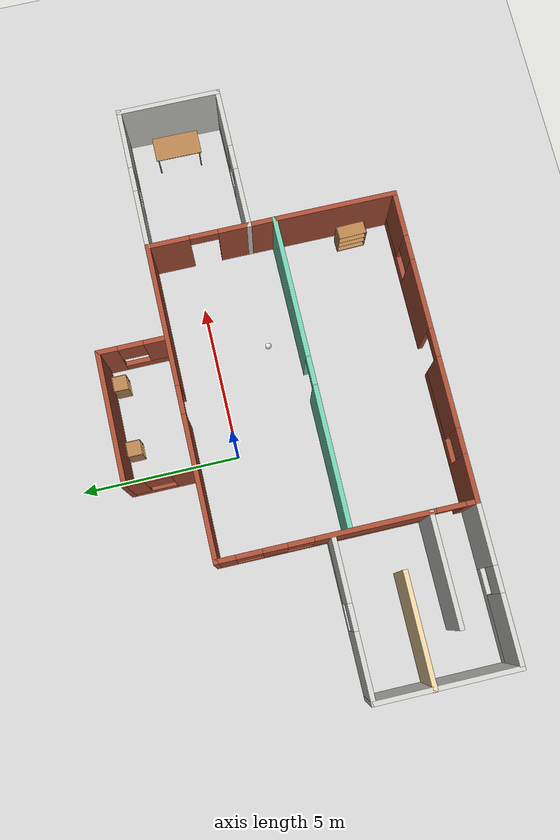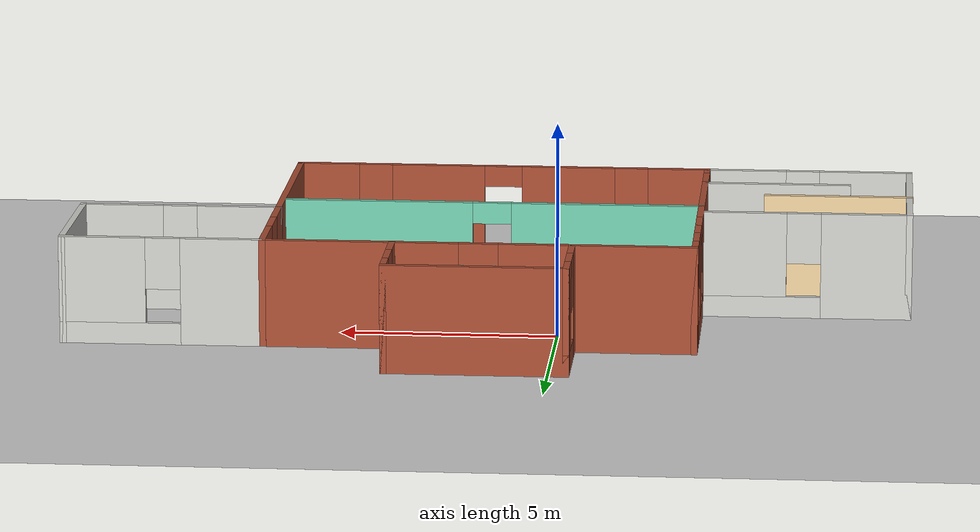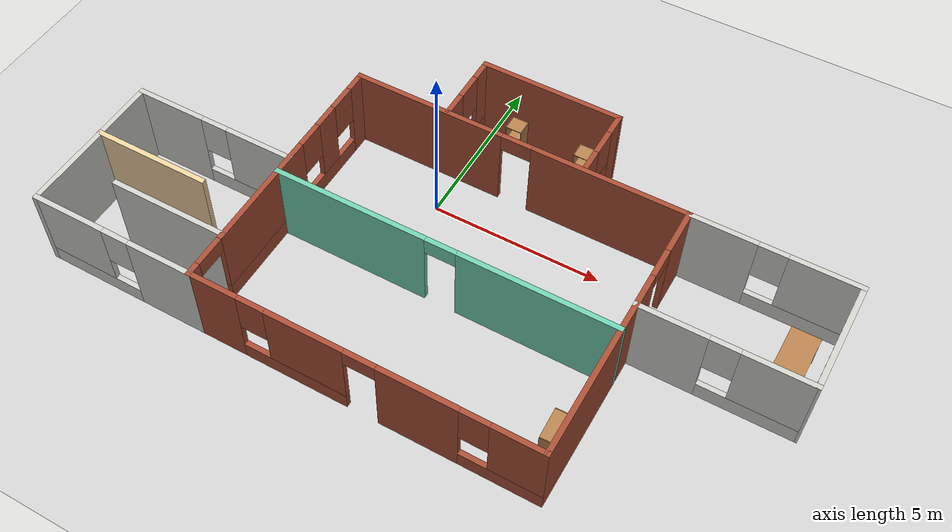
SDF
<sdf version="1.6">
 <world name="default">
  <plugin name="welcome_msg" filename="libwelcome.so"/>
  <light name="sun" type="directional">
   <pose>0 0 10 0 -0 0</pose>
   <diffuse>0.8 0.8 0.8 1</diffuse>
   <specular>0.2 0.2 0.2 1</specular>
   <attenuation>
    <range>1000</range>
    <constant>0.9</constant>
    <linear>0.01</linear>
    <quadratic>0.001</quadratic>
   </attenuation>
   <direction>-0.5 0.1 -0.9</direction>
  </light>
  <model name="ground_plane">
   <static>1</static>
   <link name="link">
    <collision name="collision">
     <geometry><plane><normal>0 0 1</normal><size>100 100</size></plane></geometry>
     <surface>
      <contact><collide_bitmask>65535</collide_bitmask></contact>
      <friction><ode><mu>100</mu><mu2>50</mu2></ode></friction>
     </surface>
    </collision>
    <visual name="visual">
     <cast_shadows>0</cast_shadows>
     <geometry><plane><normal>0 0 1</normal><size>100 100</size></plane></geometry>
     <material>
      <script><uri>file://media/materials/scripts/gazebo.material</uri><name>Gazebo/Grey</name></script>
     </material>
    </visual>
   </link>
  </model>
  <gravity>0 0 -9.8</gravity>
  <magnetic_field>6e-06 2.3e-05 -4.2e-05</magnetic_field>
  <atmosphere type="adiabatic"/>
  <physics name="default_physics" default="0" type="ode">
   <max_step_size>0.001</max_step_size>
   <real_time_factor>1</real_time_factor>
   <real_time_update_rate>1000</real_time_update_rate>
  </physics>
  <scene><ambient>0.4 0.4 0.4 1</ambient><background>0.7 0.7 0.7 1</background><shadows>1</shadows></scene>
  <spherical_coordinates>
   <surface_model>EARTH_WGS84</surface_model>
   <latitude_deg>0</latitude_deg>
   <longitude_deg>0</longitude_deg>
   <elevation>0</elevation>
   <heading_deg>0</heading_deg>
  </spherical_coordinates>
  <model name="building">
   <pose>1.60218 -1.55988 0 0 -0 0</pose>
   <link name="Wall_0">
    <pose>0.129847 -4.99566 0 0 -0 0</pose>
    <visual name="Wall_0_Visual_0">
     <pose>-4.24823 0 1.25 0 -0 0</pose>
     <geometry><box><size>1.50354 0.15 2.5</size></box></geometry>
     <material>
      <script><uri>file://media/materials/scripts/gazebo.material</uri><name>Gazebo/Bricks</name></script>
      <ambient>1 1 1 1</ambient>
     </material>
     <meta><layer>0</layer></meta>
    </visual>
    <collision name="Wall_0_Collision_0">
     <geometry><box><size>1.50354 0.15 2.5</size></box></geometry>
     <pose>-4.24823 0 1.25 0 -0 0</pose>
    </collision>
    <visual name="Wall_0_Visual_1">
     <pose>1.5728 0 1.25 0 -0 0</pose>
     <geometry><box><size>2.24445 0.15 2.5</size></box></geometry>
     <material>
      <script><uri>file://media/materials/scripts/gazebo.material</uri><name>Gazebo/Bricks</name></script>
      <ambient>1 1 1 1</ambient>
     </material>
     <meta><layer>0</layer></meta>
    </visual>
    <collision name="Wall_0_Collision_1">
     <geometry><box><size>2.24445 0.15 2.5</size></box></geometry>
     <pose>1.5728 0 1.25 0 -0 0</pose>
    </collision>
    <visual name="Wall_0_Visual_2">
     <pose>-1.97294 0 0.25 0 -0 0</pose>
     <geometry><box><size>3.04703 0.15 0.5</size></box></geometry>
     <material>
      <script><uri>file://media/materials/scripts/gazebo.material</uri><name>Gazebo/Bricks</name></script>
      <ambient>1 1 1 1</ambient>
     </material>
     <meta><layer>0</layer></meta>
    </visual>
    <collision name="Wall_0_Collision_2">
     <geometry><box><size>3.04703 0.15 0.5</size></box></geometry>
     <pose>-1.97294 0 0.25 0 -0 0</pose>
    </collision>
    <visual name="Wall_0_Visual_3">
     <pose>3.84751 0 0.25 0 -0 0</pose>
     <geometry><box><size>2.30497 0.15 0.5</size></box></geometry>
     <material>
      <script><uri>file://media/materials/scripts/gazebo.material</uri><name>Gazebo/Bricks</name></script>
      <ambient>1 1 1 1</ambient>
     </material>
     <meta><layer>0</layer></meta>
    </visual>
    <collision name="Wall_0_Collision_3">
     <geometry><box><size>2.30497 0.15 0.5</size></box></geometry>
     <pose>3.84751 0 0.25 0 -0 0</pose>
    </collision>
    <visual name="Wall_0_Visual_4">
     <pose>-1.57294 0 1.5 0 -0 0</pose>
     <geometry><box><size>2.24703 0.15 2</size></box></geometry>
     <material>
      <script><uri>file://media/materials/scripts/gazebo.material</uri><name>Gazebo/Bricks</name></script>
      <ambient>1 1 1 1</ambient>
     </material>
     <meta><layer>0</layer></meta>
    </visual>
    <collision name="Wall_0_Collision_4">
     <geometry><box><size>2.24703 0.15 2</size></box></geometry>
     <pose>-1.57294 0 1.5 0 -0 0</pose>
    </collision>
    <visual name="Wall_0_Visual_5">
     <pose>-1.57294 0 1.5 0 -0 0</pose>
     <geometry><box><size>2.24703 0.15 2</size></box></geometry>
     <material>
      <script><uri>file://media/materials/scripts/gazebo.material</uri><name>Gazebo/Bricks</name></script>
      <ambient>1 1 1 1</ambient>
     </material>
     <meta><layer>0</layer></meta>
    </visual>
    <collision name="Wall_0_Collision_5">
     <geometry><box><size>2.24703 0.15 2</size></box></geometry>
     <pose>-1.57294 0 1.5 0 -0 0</pose>
    </collision>
    <visual name="Wall_0_Visual_6">
     <pose>4.24751 0 1.5 0 -0 0</pose>
     <geometry><box><size>1.50497 0.15 2</size></box></geometry>
     <material>
      <script><uri>file://media/materials/scripts/gazebo.material</uri><name>Gazebo/Bricks</name></script>
      <ambient>1 1 1 1</ambient>
     </material>
     <meta><layer>0</layer></meta>
    </visual>
    <collision name="Wall_0_Collision_6">
     <geometry><box><size>1.50497 0.15 2</size></box></geometry>
     <pose>4.24751 0 1.5 0 -0 0</pose>
    </collision>
    <visual name="Wall_0_Visual_7">
     <pose>-3.09646 0 1.9 0 -0 0</pose>
     <geometry><box><size>0.8 0.15 1.2</size></box></geometry>
     <material>
      <script><uri>file://media/materials/scripts/gazebo.material</uri><name>Gazebo/Bricks</name></script>
      <ambient>1 1 1 1</ambient>
     </material>
     <meta><layer>0</layer></meta>
    </visual>
    <collision name="Wall_0_Collision_7">
     <geometry><box><size>0.8 0.15 1.2</size></box></geometry>
     <pose>-3.09646 0 1.9 0 -0 0</pose>
    </collision>
    <visual name="Wall_0_Visual_8">
     <pose>3.09503 0 1.9 0 -0 0</pose>
     <geometry><box><size>0.8 0.15 1.2</size></box></geometry>
     <material>
      <script><uri>file://media/materials/scripts/gazebo.material</uri><name>Gazebo/Bricks</name></script>
      <ambient>1 1 1 1</ambient>
     </material>
     <meta><layer>0</layer></meta>
    </visual>
    <collision name="Wall_0_Collision_8">
     <geometry><box><size>0.8 0.15 1.2</size></box></geometry>
     <pose>3.09503 0 1.9 0 -0 0</pose>
    </collision>
    <visual name="Wall_0_Visual_9">
     <pose>0.000575 0 2.25 0 -0 0</pose>
     <geometry><box><size>0.9 0.15 0.5</size></box></geometry>
     <material>
      <script><uri>file://media/materials/scripts/gazebo.material</uri><name>Gazebo/Bricks</name></script>
      <ambient>1 1 1 1</ambient>
     </material>
     <meta><layer>0</layer></meta>
    </visual>
    <collision name="Wall_0_Collision_9">
     <geometry><box><size>0.9 0.15 0.5</size></box></geometry>
     <pose>0.000575 0 2.25 0 -0 0</pose>
    </collision>
    <visual name="Wall_0_Visual_10">
     <pose>0.000575 0 2.25 0 -0 0</pose>
     <geometry><box><size>0.9 0.15 0.5</size></box></geometry>
     <material>
      <script><uri>file://media/materials/scripts/gazebo.material</uri><name>Gazebo/Bricks</name></script>
      <ambient>1 1 1 1</ambient>
     </material>
     <meta><layer>0</layer></meta>
    </visual>
    <collision name="Wall_0_Collision_10">
     <geometry><box><size>0.9 0.15 0.5</size></box></geometry>
     <pose>0.000575 0 2.25 0 -0 0</pose>
    </collision>
   </link>
   <link name="Wall_1">
    <pose>5.05485 -1.07066 0 0 -0 1.5708</pose>
    <visual name="Wall_1_Visual_0">
     <pose>-1.14884 0 1.25 0 -0 0</pose>
     <geometry><box><size>5.70231 0.15 2.5</size></box></geometry>
     <material>
      <script><uri>file://media/materials/scripts/gazebo.material</uri><name>Gazebo/Bricks</name></script>
      <ambient>1 1 1 1</ambient>
     </material>
     <meta><layer>0</layer></meta>
    </visual>
    <collision name="Wall_1_Collision_0">
     <geometry><box><size>5.70231 0.15 2.5</size></box></geometry>
     <pose>-1.14884 0 1.25 0 -0 0</pose>
    </collision>
    <visual name="Wall_1_Visual_1">
     <pose>3.30116 0 1.25 0 -0 0</pose>
     <geometry><box><size>1.39769 0.15 2.5</size></box></geometry>
     <material>
      <script><uri>file://media/materials/scripts/gazebo.material</uri><name>Gazebo/Bricks</name></script>
      <ambient>1 1 1 1</ambient>
     </material>
     <meta><layer>0</layer></meta>
    </visual>
    <collision name="Wall_1_Collision_1">
     <geometry><box><size>1.39769 0.15 2.5</size></box></geometry>
     <pose>3.30116 0 1.25 0 -0 0</pose>
    </collision>
    <visual name="Wall_1_Visual_2">
     <pose>2.15231 0 2.25 0 -0 0</pose>
     <geometry><box><size>0.9 0.15 0.5</size></box></geometry>
     <material>
      <script><uri>file://media/materials/scripts/gazebo.material</uri><name>Gazebo/Bricks</name></script>
      <ambient>1 1 1 1</ambient>
     </material>
     <meta><layer>0</layer></meta>
    </visual>
    <collision name="Wall_1_Collision_2">
     <geometry><box><size>0.9 0.15 0.5</size></box></geometry>
     <pose>2.15231 0 2.25 0 -0 0</pose>
    </collision>
   </link>
   <link name="Wall_10">
    <collision name="Wall_10_Collision">
     <geometry><box><size>3.5 0.15 2.5</size></box></geometry>
     <pose>0 0 1.25 0 -0 0</pose>
    </collision>
    <visual name="Wall_10_Visual">
     <pose>0 0 1.25 0 -0 0</pose>
     <geometry><box><size>3.5 0.15 2.5</size></box></geometry>
     <material>
      <script><uri>file://media/materials/scripts/gazebo.material</uri><name>Gazebo/Grey</name></script>
      <ambient>0.921569 0.807843 0.615686 1</ambient>
     </material>
     <meta><layer>0</layer></meta>
    </visual>
    <pose>-7.97989 -2.43004 0 0 -0 0</pose>
   </link>
   <link name="Wall_12">
    <pose>0.133065 -1.17007 0 0 -0 0</pose>
    <visual name="Wall_12_Visual_0">
     <pose>-2.73364 0 1.25 0 -0 0</pose>
     <geometry><box><size>4.53271 0.15 2.5</size></box></geometry>
     <material>
      <script><uri>file://media/materials/scripts/gazebo.material</uri><name>Gazebo/Grey</name></script>
      <ambient>0.435294 0.796078 0.67451 1</ambient>
     </material>
     <meta><layer>0</layer></meta>
    </visual>
    <collision name="Wall_12_Collision_0">
     <geometry><box><size>4.53271 0.15 2.5</size></box></geometry>
     <pose>-2.73364 0 1.25 0 -0 0</pose>
    </collision>
    <visual name="Wall_12_Visual_1">
     <pose>2.71636 0 1.25 0 -0 0</pose>
     <geometry><box><size>4.56729 0.15 2.5</size></box></geometry>
     <material>
      <script><uri>file://media/materials/scripts/gazebo.material</uri><name>Gazebo/Grey</name></script>
      <ambient>0.435294 0.796078 0.67451 1</ambient>
     </material>
     <meta><layer>0</layer></meta>
    </visual>
    <collision name="Wall_12_Collision_1">
     <geometry><box><size>4.56729 0.15 2.5</size></box></geometry>
     <pose>2.71636 0 1.25 0 -0 0</pose>
    </collision>
    <visual name="Wall_12_Visual_2">
     <pose>-0.017288 0 2.25 0 -0 0</pose>
     <geometry><box><size>0.9 0.15 0.5</size></box></geometry>
     <material>
      <script><uri>file://media/materials/scripts/gazebo.material</uri><name>Gazebo/Grey</name></script>
      <ambient>0.435294 0.796078 0.67451 1</ambient>
     </material>
     <meta><layer>0</layer></meta>
    </visual>
    <collision name="Wall_12_Collision_2">
     <geometry><box><size>0.9 0.15 0.5</size></box></geometry>
     <pose>-0.017288 0 2.25 0 -0 0</pose>
    </collision>
   </link>
   <link name="Wall_14">
    <pose>-2.00976 3.94566 0 0 -0 1.5708</pose>
    <visual name="Wall_14_Visual_0">
     <pose>-0.743931 0 1.25 0 -0 0</pose>
     <geometry><box><size>0.762138 0.15 2.5</size></box></geometry>
     <material>
      <script><uri>file://media/materials/scripts/gazebo.material</uri><name>Gazebo/Bricks</name></script>
      <ambient>1 1 1 1</ambient>
     </material>
     <meta><layer>0</layer></meta>
    </visual>
    <collision name="Wall_14_Collision_0">
     <geometry><box><size>0.762138 0.15 2.5</size></box></geometry>
     <pose>-0.743931 0 1.25 0 -0 0</pose>
    </collision>
    <visual name="Wall_14_Visual_1">
     <pose>0.381069 0 0.25 0 -0 0</pose>
     <geometry><box><size>1.48786 0.15 0.5</size></box></geometry>
     <material>
      <script><uri>file://media/materials/scripts/gazebo.material</uri><name>Gazebo/Bricks</name></script>
      <ambient>1 1 1 1</ambient>
     </material>
     <meta><layer>0</layer></meta>
    </visual>
    <collision name="Wall_14_Collision_1">
     <geometry><box><size>1.48786 0.15 0.5</size></box></geometry>
     <pose>0.381069 0 0.25 0 -0 0</pose>
    </collision>
    <visual name="Wall_14_Visual_2">
     <pose>0.781069 0 1.5 0 -0 0</pose>
     <geometry><box><size>0.687862 0.15 2</size></box></geometry>
     <material>
      <script><uri>file://media/materials/scripts/gazebo.material</uri><name>Gazebo/Bricks</name></script>
      <ambient>1 1 1 1</ambient>
     </material>
     <meta><layer>0</layer></meta>
    </visual>
    <collision name="Wall_14_Collision_2">
     <geometry><box><size>0.687862 0.15 2</size></box></geometry>
     <pose>0.781069 0 1.5 0 -0 0</pose>
    </collision>
    <visual name="Wall_14_Visual_3">
     <pose>0.037138 0 1.9 0 -0 0</pose>
     <geometry><box><size>0.8 0.15 1.2</size></box></geometry>
     <material>
      <script><uri>file://media/materials/scripts/gazebo.material</uri><name>Gazebo/Bricks</name></script>
      <ambient>1 1 1 1</ambient>
     </material>
     <meta><layer>0</layer></meta>
    </visual>
    <collision name="Wall_14_Collision_3">
     <geometry><box><size>0.8 0.15 1.2</size></box></geometry>
     <pose>0.037138 0 1.9 0 -0 0</pose>
    </collision>
   </link>
   <link name="Wall_15">
    <collision name="Wall_15_Collision">
     <geometry><box><size>4.25 0.15 2.5</size></box></geometry>
     <pose>0 0 1.25 0 -0 0</pose>
    </collision>
    <visual name="Wall_15_Visual">
     <pose>0 0 1.25 0 -0 0</pose>
     <geometry><box><size>4.25 0.15 2.5</size></box></geometry>
     <material>
      <script><uri>file://media/materials/scripts/gazebo.material</uri><name>Gazebo/Bricks</name></script>
      <ambient>1 1 1 1</ambient>
     </material>
     <meta><layer>0</layer></meta>
    </visual>
    <pose>0.040235 4.99566 0 0 -0 0</pose>
   </link>
   <link name="Wall_16">
    <pose>2.09023 3.94566 0 0 0 -1.5708</pose>
    <visual name="Wall_16_Visual_0">
     <pose>-0.781069 0 1.25 0 -0 0</pose>
     <geometry><box><size>0.687862 0.15 2.5</size></box></geometry>
     <material>
      <script><uri>file://media/materials/scripts/gazebo.material</uri><name>Gazebo/Bricks</name></script>
      <ambient>1 1 1 1</ambient>
     </material>
     <meta><layer>0</layer></meta>
    </visual>
    <collision name="Wall_16_Collision_0">
     <geometry><box><size>0.687862 0.15 2.5</size></box></geometry>
     <pose>-0.781069 0 1.25 0 -0 0</pose>
    </collision>
    <visual name="Wall_16_Visual_1">
     <pose>0.343931 0 0.25 0 -0 0</pose>
     <geometry><box><size>1.56214 0.15 0.5</size></box></geometry>
     <material>
      <script><uri>file://media/materials/scripts/gazebo.material</uri><name>Gazebo/Bricks</name></script>
      <ambient>1 1 1 1</ambient>
     </material>
     <meta><layer>0</layer></meta>
    </visual>
    <collision name="Wall_16_Collision_1">
     <geometry><box><size>1.56214 0.15 0.5</size></box></geometry>
     <pose>0.343931 0 0.25 0 -0 0</pose>
    </collision>
    <visual name="Wall_16_Visual_2">
     <pose>0.743931 0 1.5 0 -0 0</pose>
     <geometry><box><size>0.762138 0.15 2</size></box></geometry>
     <material>
      <script><uri>file://media/materials/scripts/gazebo.material</uri><name>Gazebo/Bricks</name></script>
      <ambient>1 1 1 1</ambient>
     </material>
     <meta><layer>0</layer></meta>
    </visual>
    <collision name="Wall_16_Collision_2">
     <geometry><box><size>0.762138 0.15 2</size></box></geometry>
     <pose>0.743931 0 1.5 0 -0 0</pose>
    </collision>
    <visual name="Wall_16_Visual_3">
     <pose>-0.037138 0 1.9 0 -0 0</pose>
     <geometry><box><size>0.8 0.15 1.2</size></box></geometry>
     <material>
      <script><uri>file://media/materials/scripts/gazebo.material</uri><name>Gazebo/Bricks</name></script>
      <ambient>1 1 1 1</ambient>
     </material>
     <meta><layer>0</layer></meta>
    </visual>
    <collision name="Wall_16_Collision_3">
     <geometry><box><size>0.8 0.15 1.2</size></box></geometry>
     <pose>-0.037138 0 1.9 0 -0 0</pose>
    </collision>
   </link>
   <link name="Wall_2">
    <pose>0.129847 2.85433 0 0 -0 3.14159</pose>
    <visual name="Wall_2_Visual_0">
     <pose>-2.7192 0 1.25 0 -0 0</pose>
     <geometry><box><size>4.5616 0.15 2.5</size></box></geometry>
     <material>
      <script><uri>file://media/materials/scripts/gazebo.material</uri><name>Gazebo/Bricks</name></script>
      <ambient>1 1 1 1</ambient>
     </material>
     <meta><layer>0</layer></meta>
    </visual>
    <collision name="Wall_2_Collision_0">
     <geometry><box><size>4.5616 0.15 2.5</size></box></geometry>
     <pose>-2.7192 0 1.25 0 -0 0</pose>
    </collision>
    <visual name="Wall_2_Visual_1">
     <pose>2.7308 0 1.25 0 -0 0</pose>
     <geometry><box><size>4.5384 0.15 2.5</size></box></geometry>
     <material>
      <script><uri>file://media/materials/scripts/gazebo.material</uri><name>Gazebo/Bricks</name></script>
      <ambient>1 1 1 1</ambient>
     </material>
     <meta><layer>0</layer></meta>
    </visual>
    <collision name="Wall_2_Collision_1">
     <geometry><box><size>4.5384 0.15 2.5</size></box></geometry>
     <pose>2.7308 0 1.25 0 -0 0</pose>
    </collision>
    <visual name="Wall_2_Visual_2">
     <pose>0.011596 0 2.25 0 -0 0</pose>
     <geometry><box><size>0.9 0.15 0.5</size></box></geometry>
     <material>
      <script><uri>file://media/materials/scripts/gazebo.material</uri><name>Gazebo/Bricks</name></script>
      <ambient>1 1 1 1</ambient>
     </material>
     <meta><layer>0</layer></meta>
    </visual>
    <collision name="Wall_2_Collision_2">
     <geometry><box><size>0.9 0.15 0.5</size></box></geometry>
     <pose>0.011596 0 2.25 0 -0 0</pose>
    </collision>
   </link>
   <link name="Wall_23">
    <pose>7.35485 2.85433 0 0 -0 0</pose>
    <visual name="Wall_23_Visual_0">
     <pose>-1.39772 0 1.25 0 -0 0</pose>
     <geometry><box><size>1.95457 0.15 2.5</size></box></geometry>
     <material>
      <script><uri>file://media/materials/scripts/gazebo.material</uri><name>Gazebo/CeilingTiled</name></script>
      <ambient>0.760784 0.662745 0.627451 1</ambient>
     </material>
     <meta><layer>0</layer></meta>
    </visual>
    <collision name="Wall_23_Collision_0">
     <geometry><box><size>1.95457 0.15 2.5</size></box></geometry>
     <pose>-1.39772 0 1.25 0 -0 0</pose>
    </collision>
    <visual name="Wall_23_Visual_1">
     <pose>0.977283 0 0.25 0 -0 0</pose>
     <geometry><box><size>2.79543 0.15 0.5</size></box></geometry>
     <material>
      <script><uri>file://media/materials/scripts/gazebo.material</uri><name>Gazebo/CeilingTiled</name></script>
      <ambient>0.760784 0.662745 0.627451 1</ambient>
     </material>
     <meta><layer>0</layer></meta>
    </visual>
    <collision name="Wall_23_Collision_1">
     <geometry><box><size>2.79543 0.15 0.5</size></box></geometry>
     <pose>0.977283 0 0.25 0 -0 0</pose>
    </collision>
    <visual name="Wall_23_Visual_2">
     <pose>1.37728 0 1.5 0 -0 0</pose>
     <geometry><box><size>1.99543 0.15 2</size></box></geometry>
     <material>
      <script><uri>file://media/materials/scripts/gazebo.material</uri><name>Gazebo/CeilingTiled</name></script>
      <ambient>0.760784 0.662745 0.627451 1</ambient>
     </material>
     <meta><layer>0</layer></meta>
    </visual>
    <collision name="Wall_23_Collision_2">
     <geometry><box><size>1.99543 0.15 2</size></box></geometry>
     <pose>1.37728 0 1.5 0 -0 0</pose>
    </collision>
    <visual name="Wall_23_Visual_3">
     <pose>-0.020434 0 1.9 0 -0 0</pose>
     <geometry><box><size>0.8 0.15 1.2</size></box></geometry>
     <material>
      <script><uri>file://media/materials/scripts/gazebo.material</uri><name>Gazebo/CeilingTiled</name></script>
      <ambient>0.760784 0.662745 0.627451 1</ambient>
     </material>
     <meta><layer>0</layer></meta>
    </visual>
    <collision name="Wall_23_Collision_3">
     <geometry><box><size>0.8 0.15 1.2</size></box></geometry>
     <pose>-0.020434 0 1.9 0 -0 0</pose>
    </collision>
   </link>
   <link name="Wall_3">
    <pose>-4.79515 -1.07066 0 0 0 -1.5708</pose>
    <visual name="Wall_3_Visual_0">
     <pose>-3.66273 0 1.25 0 -0 0</pose>
     <geometry><box><size>0.674547 0.15 2.5</size></box></geometry>
     <material>
      <script><uri>file://media/materials/scripts/gazebo.material</uri><name>Gazebo/Bricks</name></script>
      <ambient>1 1 1 1</ambient>
     </material>
     <meta><layer>0</layer></meta>
    </visual>
    <collision name="Wall_3_Collision_0">
     <geometry><box><size>0.674547 0.15 2.5</size></box></geometry>
     <pose>-3.66273 0 1.25 0 -0 0</pose>
    </collision>
    <visual name="Wall_3_Visual_1">
     <pose>3.78969 0 1.25 0 -0 0</pose>
     <geometry><box><size>0.420627 0.15 2.5</size></box></geometry>
     <material>
      <script><uri>file://media/materials/scripts/gazebo.material</uri><name>Gazebo/Bricks</name></script>
      <ambient>1 1 1 1</ambient>
     </material>
     <meta><layer>0</layer></meta>
    </visual>
    <collision name="Wall_3_Collision_1">
     <geometry><box><size>0.420627 0.15 2.5</size></box></geometry>
     <pose>3.78969 0 1.25 0 -0 0</pose>
    </collision>
    <visual name="Wall_3_Visual_2">
     <pose>-0.32304 0 0.25 0 -0 0</pose>
     <geometry><box><size>6.00483 0.15 0.5</size></box></geometry>
     <material>
      <script><uri>file://media/materials/scripts/gazebo.material</uri><name>Gazebo/Bricks</name></script>
      <ambient>1 1 1 1</ambient>
     </material>
     <meta><layer>0</layer></meta>
    </visual>
    <collision name="Wall_3_Collision_2">
     <geometry><box><size>6.00483 0.15 0.5</size></box></geometry>
     <pose>-0.32304 0 0.25 0 -0 0</pose>
    </collision>
    <visual name="Wall_3_Visual_3">
     <pose>-2.15058 0 1.5 0 -0 0</pose>
     <geometry><box><size>0.749751 0.15 2</size></box></geometry>
     <material>
      <script><uri>file://media/materials/scripts/gazebo.material</uri><name>Gazebo/Bricks</name></script>
      <ambient>1 1 1 1</ambient>
     </material>
     <meta><layer>0</layer></meta>
    </visual>
    <collision name="Wall_3_Collision_3">
     <geometry><box><size>0.749751 0.15 2</size></box></geometry>
     <pose>-2.15058 0 1.5 0 -0 0</pose>
    </collision>
    <visual name="Wall_3_Visual_4">
     <pose>0.851835 0 1.5 0 -0 0</pose>
     <geometry><box><size>3.65508 0.15 2</size></box></geometry>
     <material>
      <script><uri>file://media/materials/scripts/gazebo.material</uri><name>Gazebo/Bricks</name></script>
      <ambient>1 1 1 1</ambient>
     </material>
     <meta><layer>0</layer></meta>
    </visual>
    <collision name="Wall_3_Collision_4">
     <geometry><box><size>3.65508 0.15 2</size></box></geometry>
     <pose>0.851835 0 1.5 0 -0 0</pose>
    </collision>
    <visual name="Wall_3_Visual_5">
     <pose>-2.92545 0 1.9 0 -0 0</pose>
     <geometry><box><size>0.8 0.15 1.2</size></box></geometry>
     <material>
      <script><uri>file://media/materials/scripts/gazebo.material</uri><name>Gazebo/Bricks</name></script>
      <ambient>1 1 1 1</ambient>
     </material>
     <meta><layer>0</layer></meta>
    </visual>
    <collision name="Wall_3_Collision_5">
     <geometry><box><size>0.8 0.15 1.2</size></box></geometry>
     <pose>-2.92545 0 1.9 0 -0 0</pose>
    </collision>
    <visual name="Wall_3_Visual_6">
     <pose>-1.3757 0 1.9 0 -0 0</pose>
     <geometry><box><size>0.8 0.15 1.2</size></box></geometry>
     <material>
      <script><uri>file://media/materials/scripts/gazebo.material</uri><name>Gazebo/Bricks</name></script>
      <ambient>1 1 1 1</ambient>
     </material>
     <meta><layer>0</layer></meta>
    </visual>
    <collision name="Wall_3_Collision_6">
     <geometry><box><size>0.8 0.15 1.2</size></box></geometry>
     <pose>-1.3757 0 1.9 0 -0 0</pose>
    </collision>
    <visual name="Wall_3_Visual_7">
     <pose>3.12937 0 2.25 0 -0 0</pose>
     <geometry><box><size>0.9 0.15 0.5</size></box></geometry>
     <material>
      <script><uri>file://media/materials/scripts/gazebo.material</uri><name>Gazebo/Bricks</name></script>
      <ambient>1 1 1 1</ambient>
     </material>
     <meta><layer>0</layer></meta>
    </visual>
    <collision name="Wall_3_Collision_7">
     <geometry><box><size>0.9 0.15 0.5</size></box></geometry>
     <pose>3.12937 0 2.25 0 -0 0</pose>
    </collision>
   </link>
   <link name="Wall_32">
    <pose>7.3531 -0.347976 0 0 -0 0</pose>
    <visual name="Wall_32_Visual_0">
     <pose>-1.38163 0 1.25 0 -0 0</pose>
     <geometry><box><size>1.98673 0.15 2.5</size></box></geometry>
     <material>
      <script><uri>file://media/materials/scripts/gazebo.material</uri><name>Gazebo/CeilingTiled</name></script>
      <ambient>0.760784 0.662745 0.627451 1</ambient>
     </material>
     <meta><layer>0</layer></meta>
    </visual>
    <collision name="Wall_32_Collision_0">
     <geometry><box><size>1.98673 0.15 2.5</size></box></geometry>
     <pose>-1.38163 0 1.25 0 -0 0</pose>
    </collision>
    <visual name="Wall_32_Visual_1">
     <pose>0.993365 0 0.25 0 -0 0</pose>
     <geometry><box><size>2.76327 0.15 0.5</size></box></geometry>
     <material>
      <script><uri>file://media/materials/scripts/gazebo.material</uri><name>Gazebo/CeilingTiled</name></script>
      <ambient>0.760784 0.662745 0.627451 1</ambient>
     </material>
     <meta><layer>0</layer></meta>
    </visual>
    <collision name="Wall_32_Collision_1">
     <geometry><box><size>2.76327 0.15 0.5</size></box></geometry>
     <pose>0.993365 0 0.25 0 -0 0</pose>
    </collision>
    <visual name="Wall_32_Visual_2">
     <pose>1.39336 0 1.5 0 -0 0</pose>
     <geometry><box><size>1.96327 0.15 2</size></box></geometry>
     <material>
      <script><uri>file://media/materials/scripts/gazebo.material</uri><name>Gazebo/CeilingTiled</name></script>
      <ambient>0.760784 0.662745 0.627451 1</ambient>
     </material>
     <meta><layer>0</layer></meta>
    </visual>
    <collision name="Wall_32_Collision_2">
     <geometry><box><size>1.96327 0.15 2</size></box></geometry>
     <pose>1.39336 0 1.5 0 -0 0</pose>
    </collision>
    <visual name="Wall_32_Visual_3">
     <pose>0.01173 0 1.9 0 -0 0</pose>
     <geometry><box><size>0.8 0.15 1.2</size></box></geometry>
     <material>
      <script><uri>file://media/materials/scripts/gazebo.material</uri><name>Gazebo/CeilingTiled</name></script>
      <ambient>0.760784 0.662745 0.627451 1</ambient>
     </material>
     <meta><layer>0</layer></meta>
    </visual>
    <collision name="Wall_32_Collision_3">
     <geometry><box><size>0.8 0.15 1.2</size></box></geometry>
     <pose>0.01173 0 1.9 0 -0 0</pose>
    </collision>
   </link>
   <link name="Wall_33">
    <collision name="Wall_33_Collision">
     <geometry><box><size>3.35231 0.15 2.5</size></box></geometry>
     <pose>0 0 1.25 0 -0 0</pose>
    </collision>
    <visual name="Wall_33_Visual">
     <pose>0 0 1.25 0 -0 0</pose>
     <geometry><box><size>3.35231 0.15 2.5</size></box></geometry>
     <material>
      <script><uri>file://media/materials/scripts/gazebo.material</uri><name>Gazebo/CeilingTiled</name></script>
      <ambient>0.760784 0.662745 0.627451 1</ambient>
     </material>
     <meta><layer>0</layer></meta>
    </visual>
    <pose>9.65397 1.25318 0 0 -0 1.57025</pose>
   </link>
   <link name="Wall_4">
    <pose>-7.22015 -4.99566 0 0 -0 3.14159</pose>
    <visual name="Wall_4_Visual_0">
     <pose>-1.51294 0 1.25 0 -0 0</pose>
     <geometry><box><size>1.97411 0.15 2.5</size></box></geometry>
     <material>
      <script><uri>file://media/materials/scripts/gazebo.material</uri><name>Gazebo/CeilingTiled</name></script>
      <ambient>0.921569 0.807843 0.615686 1</ambient>
     </material>
     <meta><layer>0</layer></meta>
    </visual>
    <collision name="Wall_4_Collision_0">
     <geometry><box><size>1.97411 0.15 2.5</size></box></geometry>
     <pose>-1.51294 0 1.25 0 -0 0</pose>
    </collision>
    <visual name="Wall_4_Visual_1">
     <pose>0.987056 0 0.25 0 -0 0</pose>
     <geometry><box><size>3.02589 0.15 0.5</size></box></geometry>
     <material>
      <script><uri>file://media/materials/scripts/gazebo.material</uri><name>Gazebo/CeilingTiled</name></script>
      <ambient>0.921569 0.807843 0.615686 1</ambient>
     </material>
     <meta><layer>0</layer></meta>
    </visual>
    <collision name="Wall_4_Collision_1">
     <geometry><box><size>3.02589 0.15 0.5</size></box></geometry>
     <pose>0.987056 0 0.25 0 -0 0</pose>
    </collision>
    <visual name="Wall_4_Visual_2">
     <pose>1.38706 0 1.5 0 -0 0</pose>
     <geometry><box><size>2.22589 0.15 2</size></box></geometry>
     <material>
      <script><uri>file://media/materials/scripts/gazebo.material</uri><name>Gazebo/CeilingTiled</name></script>
      <ambient>0.921569 0.807843 0.615686 1</ambient>
     </material>
     <meta><layer>0</layer></meta>
    </visual>
    <collision name="Wall_4_Collision_2">
     <geometry><box><size>2.22589 0.15 2</size></box></geometry>
     <pose>1.38706 0 1.5 0 -0 0</pose>
    </collision>
    <visual name="Wall_4_Visual_3">
     <pose>-0.125889 0 1.9 0 -0 0</pose>
     <geometry><box><size>0.8 0.15 1.2</size></box></geometry>
     <material>
      <script><uri>file://media/materials/scripts/gazebo.material</uri><name>Gazebo/CeilingTiled</name></script>
      <ambient>0.921569 0.807843 0.615686 1</ambient>
     </material>
     <meta><layer>0</layer></meta>
    </visual>
    <collision name="Wall_4_Collision_3">
     <geometry><box><size>0.8 0.15 1.2</size></box></geometry>
     <pose>-0.125889 0 1.9 0 -0 0</pose>
    </collision>
   </link>
   <link name="Wall_5">
    <collision name="Wall_5_Collision">
     <geometry><box><size>4.5 0.15 2.5</size></box></geometry>
     <pose>0 0 1.25 0 -0 0</pose>
    </collision>
    <visual name="Wall_5_Visual">
     <pose>0 0 1.25 0 -0 0</pose>
     <geometry><box><size>4.5 0.15 2.5</size></box></geometry>
     <material>
      <script><uri>file://media/materials/scripts/gazebo.material</uri><name>Gazebo/CeilingTiled</name></script>
      <ambient>0.921569 0.807843 0.615686 1</ambient>
     </material>
     <meta><layer>0</layer></meta>
    </visual>
    <pose>-9.64515 -2.82066 0 0 -0 1.5708</pose>
   </link>
   <link name="Wall_6">
    <pose>-7.22015 -0.645665 0 0 -0 0</pose>
    <visual name="Wall_6_Visual_0">
     <pose>-1.43953 0 1.25 0 -0 0</pose>
     <geometry><box><size>2.12095 0.15 2.5</size></box></geometry>
     <material>
      <script><uri>file://media/materials/scripts/gazebo.material</uri><name>Gazebo/CeilingTiled</name></script>
      <ambient>0.921569 0.807843 0.615686 1</ambient>
     </material>
     <meta><layer>0</layer></meta>
    </visual>
    <collision name="Wall_6_Collision_0">
     <geometry><box><size>2.12095 0.15 2.5</size></box></geometry>
     <pose>-1.43953 0 1.25 0 -0 0</pose>
    </collision>
    <visual name="Wall_6_Visual_1">
     <pose>1.06047 0 0.25 0 -0 0</pose>
     <geometry><box><size>2.87905 0.15 0.5</size></box></geometry>
     <material>
      <script><uri>file://media/materials/scripts/gazebo.material</uri><name>Gazebo/CeilingTiled</name></script>
      <ambient>0.921569 0.807843 0.615686 1</ambient>
     </material>
     <meta><layer>0</layer></meta>
    </visual>
    <collision name="Wall_6_Collision_1">
     <geometry><box><size>2.87905 0.15 0.5</size></box></geometry>
     <pose>1.06047 0 0.25 0 -0 0</pose>
    </collision>
    <visual name="Wall_6_Visual_2">
     <pose>1.46047 0 1.5 0 -0 0</pose>
     <geometry><box><size>2.07905 0.15 2</size></box></geometry>
     <material>
      <script><uri>file://media/materials/scripts/gazebo.material</uri><name>Gazebo/CeilingTiled</name></script>
      <ambient>0.921569 0.807843 0.615686 1</ambient>
     </material>
     <meta><layer>0</layer></meta>
    </visual>
    <collision name="Wall_6_Collision_2">
     <geometry><box><size>2.07905 0.15 2</size></box></geometry>
     <pose>1.46047 0 1.5 0 -0 0</pose>
    </collision>
    <visual name="Wall_6_Visual_3">
     <pose>0.020948 0 1.9 0 -0 0</pose>
     <geometry><box><size>0.8 0.15 1.2</size></box></geometry>
     <material>
      <script><uri>file://media/materials/scripts/gazebo.material</uri><name>Gazebo/CeilingTiled</name></script>
      <ambient>0.921569 0.807843 0.615686 1</ambient>
     </material>
     <meta><layer>0</layer></meta>
    </visual>
    <collision name="Wall_6_Collision_3">
     <geometry><box><size>0.8 0.15 1.2</size></box></geometry>
     <pose>0.020948 0 1.9 0 -0 0</pose>
    </collision>
   </link>
   <link name="Wall_8">
    <collision name="Wall_8_Collision">
     <geometry><box><size>3.5 0.15 2.5</size></box></geometry>
     <pose>0 0 1.25 0 -0 0</pose>
    </collision>
    <visual name="Wall_8_Visual">
     <pose>0 0 1.25 0 -0 0</pose>
     <geometry><box><size>3.5 0.15 2.5</size></box></geometry>
     <material>
      <script><uri>file://media/materials/scripts/gazebo.material</uri><name>Gazebo/CeilingTiled</name></script>
      <ambient>0.921569 0.807843 0.615686 1</ambient>
     </material>
     <meta><layer>0</layer></meta>
    </visual>
    <pose>-6.50263 -3.59663 0 0 -0 3.14159</pose>
   </link>
   <static>1</static>
  </model>
  <model name="table">
   <static>1</static>
   <link name="link">
    <collision name="surface">
     <pose>0 0 1 0 -0 0</pose>
     <geometry><box><size>1.5 0.8 0.03</size></box></geometry>
     <surface><friction><ode><mu>0.6</mu><mu2>0.6</mu2></ode></friction></surface>
    </collision>
    <visual name="visual1">
     <pose>0 0 1 0 -0 0</pose>
     <geometry><box><size>1.5 0.8 0.03</size></box></geometry>
     <material>
      <script><uri>file://media/materials/scripts/gazebo.material</uri><name>Gazebo/Wood</name></script>
     </material>
    </visual>
    <collision name="front_left_leg">
     <pose>0.68 0.38 0.5 0 -0 0</pose>
     <geometry><cylinder><radius>0.02</radius><length>1</length></cylinder></geometry>
    </collision>
    <visual name="front_left_leg">
     <pose>0.68 0.38 0.5 0 -0 0</pose>
     <geometry><cylinder><radius>0.02</radius><length>1</length></cylinder></geometry>
     <material>
      <script><uri>file://media/materials/scripts/gazebo.material</uri><name>Gazebo/Grey</name></script>
     </material>
    </visual>
    <collision name="front_right_leg">
     <pose>0.68 -0.38 0.5 0 -0 0</pose>
     <geometry><cylinder><radius>0.02</radius><length>1</length></cylinder></geometry>
    </collision>
    <visual name="front_right_leg">
     <pose>0.68 -0.38 0.5 0 -0 0</pose>
     <geometry><cylinder><radius>0.02</radius><length>1</length></cylinder></geometry>
     <material>
      <script><uri>file://media/materials/scripts/gazebo.material</uri><name>Gazebo/Grey</name></script>
     </material>
    </visual>
    <collision name="back_right_leg">
     <pose>-0.68 -0.38 0.5 0 -0 0</pose>
     <geometry><cylinder><radius>0.02</radius><length>1</length></cylinder></geometry>
    </collision>
    <visual name="back_right_leg">
     <pose>-0.68 -0.38 0.5 0 -0 0</pose>
     <geometry><cylinder><radius>0.02</radius><length>1</length></cylinder></geometry>
     <material>
      <script><uri>file://media/materials/scripts/gazebo.material</uri><name>Gazebo/Grey</name></script>
     </material>
    </visual>
    <collision name="back_left_leg">
     <pose>-0.68 0.38 0.5 0 -0 0</pose>
     <geometry><cylinder><radius>0.02</radius><length>1</length></cylinder></geometry>
    </collision>
    <visual name="back_left_leg">
     <pose>-0.68 0.38 0.5 0 -0 0</pose>
     <geometry><cylinder><radius>0.02</radius><length>1</length></cylinder></geometry>
     <material>
      <script><uri>file://media/materials/scripts/gazebo.material</uri><name>Gazebo/Grey</name></script>
     </material>
    </visual>
   </link>
   <pose>10.4444 -0.282991 0 0 0 -1.57688</pose>
  </model>
  <model name="cabinet">
   <static>1</static>
   <link name="cabinet_bottom_plate">
    <inertial>
     <pose>0 0 -1 0 -0 0</pose>
     <inertia><ixx>2.05</ixx><ixy>0</ixy><ixz>0</ixz><iyy>2.05</iyy><iyz>0</iyz><izz>2.05</izz></inertia>
     <mass>25</mass>
    </inertial>
    <collision name="cabinet_bottom_plate_geom">
     <pose>0 0 0.01 0 -0 0</pose>
     <geometry><box><size>0.45 0.45 0.02</size></box></geometry>
    </collision>
    <visual name="cabinet_bottom_plate_geom_visual">
     <pose>0 0 0.01 0 -0 0</pose>
     <geometry><box><size>0.45 0.45 0.02</size></box></geometry>
     <material>
      <script><uri>file://media/materials/scripts/gazebo.material</uri><name>Gazebo/Wood</name></script>
     </material>
    </visual>
    <collision name="cabinet_bottom_plate_geom_cabinet_back_plate">
     <pose>0.235 0 0.51 0 -0 0</pose>
     <geometry><box><size>0.02 0.45 1.02</size></box></geometry>
    </collision>
    <visual name="cabinet_bottom_plate_geom_cabinet_back_plate_visual">
     <pose>0.235 0 0.51 0 -0 0</pose>
     <geometry><box><size>0.02 0.45 1.02</size></box></geometry>
     <material>
      <script><uri>file://media/materials/scripts/gazebo.material</uri><name>Gazebo/Wood</name></script>
     </material>
    </visual>
    <collision name="cabinet_bottom_plate_geom_cabinet_left_plate">
     <pose>0 0.235 0.51 0 -0 0</pose>
     <geometry><box><size>0.45 0.02 1.02</size></box></geometry>
    </collision>
    <visual name="cabinet_bottom_plate_geom_cabinet_left_plate_visual">
     <pose>0 0.235 0.51 0 -0 0</pose>
     <geometry><box><size>0.45 0.02 1.02</size></box></geometry>
     <material>
      <script><uri>file://media/materials/scripts/gazebo.material</uri><name>Gazebo/Wood</name></script>
     </material>
    </visual>
    <collision name="cabinet_bottom_plate_geom_cabinet_middle_plate">
     <pose>0 0 0.51 0 -0 0</pose>
     <geometry><box><size>0.45 0.45 0.02</size></box></geometry>
    </collision>
    <visual name="cabinet_bottom_plate_geom_cabinet_middle_plate_visual">
     <pose>0 0 0.51 0 -0 0</pose>
     <geometry><box><size>0.45 0.45 0.02</size></box></geometry>
     <material>
      <script><uri>file://media/materials/scripts/gazebo.material</uri><name>Gazebo/Wood</name></script>
     </material>
    </visual>
    <collision name="cabinet_bottom_plate_geom_cabinet_right_plate">
     <pose>0 -0.235 0.51 0 -0 0</pose>
     <geometry><box><size>0.45 0.02 1.02</size></box></geometry>
    </collision>
    <visual name="cabinet_bottom_plate_geom_cabinet_right_plate_visual">
     <pose>0 -0.235 0.51 0 -0 0</pose>
     <geometry><box><size>0.45 0.02 1.02</size></box></geometry>
     <material>
      <script><uri>file://media/materials/scripts/gazebo.material</uri><name>Gazebo/Wood</name></script>
     </material>
    </visual>
    <collision name="cabinet_bottom_plate_geom_cabinet_top_plate">
     <pose>0 0 1.01 0 -0 0</pose>
     <geometry><box><size>0.45 0.45 0.02</size></box></geometry>
    </collision>
    <visual name="cabinet_bottom_plate_geom_cabinet_top_plate_visual">
     <pose>0 0 1.01 0 -0 0</pose>
     <geometry><box><size>0.45 0.45 0.02</size></box></geometry>
     <material>
      <script><uri>file://media/materials/scripts/gazebo.material</uri><name>Gazebo/Wood</name></script>
     </material>
    </visual>
   </link>
   <pose>0.860158 3.07541 0 0 -0 1.57281</pose>
  </model>
  <model name="cabinet_0">
   <static>1</static>
   <link name="cabinet_bottom_plate">
    <inertial>
     <pose>0 0 -1 0 -0 0</pose>
     <inertia><ixx>2.05</ixx><ixy>0</ixy><ixz>0</ixz><iyy>2.05</iyy><iyz>0</iyz><izz>2.05</izz></inertia>
     <mass>25</mass>
    </inertial>
    <collision name="cabinet_bottom_plate_geom">
     <pose>0 0 0.01 0 -0 0</pose>
     <geometry><box><size>0.45 0.45 0.02</size></box></geometry>
    </collision>
    <visual name="cabinet_bottom_plate_geom_visual">
     <pose>0 0 0.01 0 -0 0</pose>
     <geometry><box><size>0.45 0.45 0.02</size></box></geometry>
     <material>
      <script><uri>file://media/materials/scripts/gazebo.material</uri><name>Gazebo/Wood</name></script>
     </material>
    </visual>
    <collision name="cabinet_bottom_plate_geom_cabinet_back_plate">
     <pose>0.235 0 0.51 0 -0 0</pose>
     <geometry><box><size>0.02 0.45 1.02</size></box></geometry>
    </collision>
    <visual name="cabinet_bottom_plate_geom_cabinet_back_plate_visual">
     <pose>0.235 0 0.51 0 -0 0</pose>
     <geometry><box><size>0.02 0.45 1.02</size></box></geometry>
     <material>
      <script><uri>file://media/materials/scripts/gazebo.material</uri><name>Gazebo/Wood</name></script>
     </material>
    </visual>
    <collision name="cabinet_bottom_plate_geom_cabinet_left_plate">
     <pose>0 0.235 0.51 0 -0 0</pose>
     <geometry><box><size>0.45 0.02 1.02</size></box></geometry>
    </collision>
    <visual name="cabinet_bottom_plate_geom_cabinet_left_plate_visual">
     <pose>0 0.235 0.51 0 -0 0</pose>
     <geometry><box><size>0.45 0.02 1.02</size></box></geometry>
     <material>
      <script><uri>file://media/materials/scripts/gazebo.material</uri><name>Gazebo/Wood</name></script>
     </material>
    </visual>
    <collision name="cabinet_bottom_plate_geom_cabinet_middle_plate">
     <pose>0 0 0.51 0 -0 0</pose>
     <geometry><box><size>0.45 0.45 0.02</size></box></geometry>
    </collision>
    <visual name="cabinet_bottom_plate_geom_cabinet_middle_plate_visual">
     <pose>0 0 0.51 0 -0 0</pose>
     <geometry><box><size>0.45 0.45 0.02</size></box></geometry>
     <material>
      <script><uri>file://media/materials/scripts/gazebo.material</uri><name>Gazebo/Wood</name></script>
     </material>
    </visual>
    <collision name="cabinet_bottom_plate_geom_cabinet_right_plate">
     <pose>0 -0.235 0.51 0 -0 0</pose>
     <geometry><box><size>0.45 0.02 1.02</size></box></geometry>
    </collision>
    <visual name="cabinet_bottom_plate_geom_cabinet_right_plate_visual">
     <pose>0 -0.235 0.51 0 -0 0</pose>
     <geometry><box><size>0.45 0.02 1.02</size></box></geometry>
     <material>
      <script><uri>file://media/materials/scripts/gazebo.material</uri><name>Gazebo/Wood</name></script>
     </material>
    </visual>
    <collision name="cabinet_bottom_plate_geom_cabinet_top_plate">
     <pose>0 0 1.01 0 -0 0</pose>
     <geometry><box><size>0.45 0.45 0.02</size></box></geometry>
    </collision>
    <visual name="cabinet_bottom_plate_geom_cabinet_top_plate_visual">
     <pose>0 0 1.01 0 -0 0</pose>
     <geometry><box><size>0.45 0.45 0.02</size></box></geometry>
     <material>
      <script><uri>file://media/materials/scripts/gazebo.material</uri><name>Gazebo/Wood</name></script>
     </material>
    </visual>
   </link>
   <pose>2.98386 3.09281 0 0 -0 1.56613</pose>
  </model>
  <model name="bookshelf">
   <static>1</static>
   <link name="link">
    <inertial><mass>1</mass></inertial>
    <collision name="back">
     <pose>0 0.005 0.6 0 -0 0</pose>
     <geometry><box><size>0.9 0.01 1.2</size></box></geometry>
    </collision>
    <visual name="visual1">
     <pose>0 0.005 0.6 0 -0 0</pose>
     <geometry><box><size>0.9 0.01 1.2</size></box></geometry>
     <material>
      <script><uri>file://media/materials/scripts/gazebo.material</uri><name>Gazebo/Wood</name></script>
     </material>
    </visual>
    <collision name="left_side">
     <pose>0.45 -0.195 0.6 0 -0 0</pose>
     <geometry><box><size>0.02 0.4 1.2</size></box></geometry>
    </collision>
    <visual name="visual2">
     <pose>0.45 -0.195 0.6 0 -0 0</pose>
     <geometry><box><size>0.02 0.4 1.2</size></box></geometry>
     <material>
      <script><uri>file://media/materials/scripts/gazebo.material</uri><name>Gazebo/Wood</name></script>
     </material>
    </visual>
    <collision name="right_side">
     <pose>-0.45 -0.195 0.6 0 -0 0</pose>
     <geometry><box><size>0.02 0.4 1.2</size></box></geometry>
    </collision>
    <visual name="visual3">
     <pose>-0.45 -0.195 0.6 0 -0 0</pose>
     <geometry><box><size>0.02 0.4 1.2</size></box></geometry>
     <material>
      <script><uri>file://media/materials/scripts/gazebo.material</uri><name>Gazebo/Wood</name></script>
     </material>
    </visual>
    <collision name="bottom">
     <pose>0 -0.195 0.03 0 -0 0</pose>
     <geometry><box><size>0.88 0.4 0.06</size></box></geometry>
    </collision>
    <visual name="visual4">
     <pose>0 -0.195 0.03 0 -0 0</pose>
     <geometry><box><size>0.88 0.4 0.06</size></box></geometry>
     <material>
      <script><uri>file://media/materials/scripts/gazebo.material</uri><name>Gazebo/Wood</name></script>
     </material>
    </visual>
    <collision name="top">
     <pose>0 -0.195 1.19 0 -0 0</pose>
     <geometry><box><size>0.88 0.4 0.02</size></box></geometry>
    </collision>
    <visual name="visual5">
     <pose>0 -0.195 1.19 0 -0 0</pose>
     <geometry><box><size>0.88 0.4 0.02</size></box></geometry>
     <material>
      <script><uri>file://media/materials/scripts/gazebo.material</uri><name>Gazebo/Wood</name></script>
     </material>
    </visual>
    <collision name="low_shelf">
     <pose>0 -0.195 0.43 0 -0 0</pose>
     <geometry><box><size>0.88 0.4 0.02</size></box></geometry>
    </collision>
    <visual name="visual6">
     <pose>0 -0.195 0.43 0 -0 0</pose>
     <geometry><box><size>0.88 0.4 0.02</size></box></geometry>
     <material>
      <script><uri>file://media/materials/scripts/gazebo.material</uri><name>Gazebo/Wood</name></script>
     </material>
    </visual>
    <collision name="high_shelf">
     <pose>0 -0.195 0.8 0 -0 0</pose>
     <geometry><box><size>0.88 0.4 0.02</size></box></geometry>
    </collision>
    <visual name="visual7">
     <pose>0 -0.195 0.8 0 -0 0</pose>
     <geometry><box><size>0.88 0.4 0.02</size></box></geometry>
     <material>
      <script><uri>file://media/materials/scripts/gazebo.material</uri><name>Gazebo/Wood</name></script>
     </material>
    </visual>
   </link>
   <pose>6.42465 -5.15494 0 0 0 -1.54112</pose>
  </model>
  <model name="my_ball">
   <link name="link_0">
    <inertial>
     <mass>1</mass>
     <inertia><ixx>0.1</ixx><ixy>0</ixy><ixz>0</ixz><iyy>0.1</iyy><iyz>0</iyz><izz>0.1</izz></inertia>
    </inertial>
    <visual name="visual">
     <geometry><sphere><radius>0.1</radius></sphere></geometry>
     <material>
      <lighting>1</lighting>
      <script><uri>file://media/materials/scripts/gazebo.material</uri><name>Gazebo/White</name></script>
      <shader type="pixel"><normal_map>__default__</normal_map></shader>
      <ambient>1 1 1 1</ambient>
      <diffuse>1 1 1 1</diffuse>
      <specular>1 1 1 1</specular>
      <emissive>1 1 1 1</emissive>
     </material>
    </visual>
    <collision name="collision">
     <geometry><sphere><radius>0.1</radius></sphere></geometry>
     <surface>
      <friction>
       <ode><mu>1</mu><mu2>1</mu2><fdir1>0 0 0</fdir1><slip1>0</slip1><slip2>0</slip2></ode>
       <torsional>
        <coefficient>1</coefficient>
        <patch_radius>0</patch_radius>
        <surface_radius>0</surface_radius>
        <use_patch_radius>1</use_patch_radius>
        <ode><slip>0</slip></ode>
       </torsional>
      </friction>
      <bounce><restitution_coefficient>0</restitution_coefficient><threshold>1e+06</threshold></bounce>
      <contact>
       <collide_without_contact>0</collide_without_contact>
       <collide_without_contact_bitmask>1</collide_without_contact_bitmask>
       <collide_bitmask>1</collide_bitmask>
       <ode>
        <soft_cfm>0</soft_cfm>
        <soft_erp>0.2</soft_erp>
        <kp>1e+13</kp>
        <kd>1</kd>
        <max_vel>0.01</max_vel>
        <min_depth>0</min_depth>
       </ode>
       <bullet>
        <split_impulse>1</split_impulse>
        <split_impulse_penetration_threshold>-0.01</split_impulse_penetration_threshold>
        <soft_cfm>0</soft_cfm>
        <soft_erp>0.2</soft_erp>
        <kp>1e+13</kp>
        <kd>1</kd>
       </bullet>
      </contact>
     </surface>
    </collision>
   </link>
   <static>0</static>
   <pose>3.34735 -1.75436 0.1 1.74451 1.14749 0.957467</pose>
  </model>
 </world>
</sdf>
